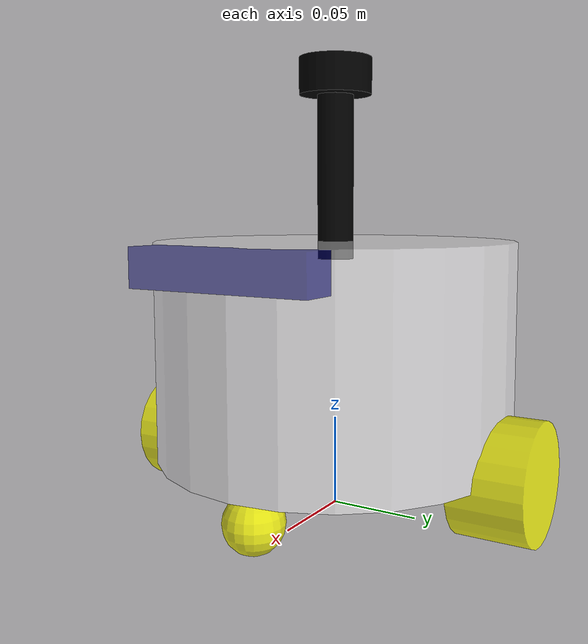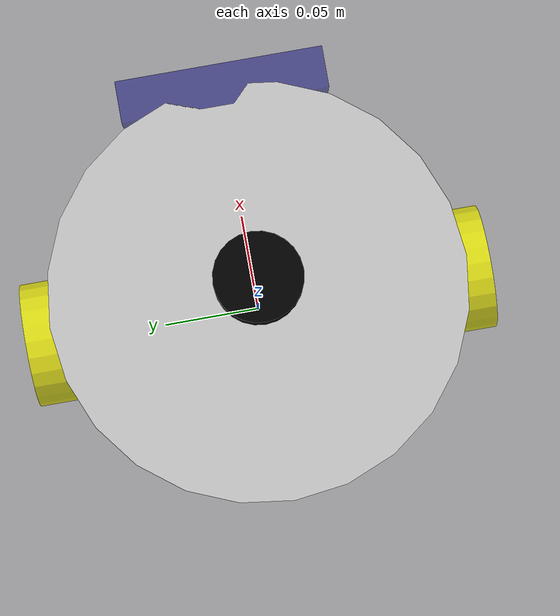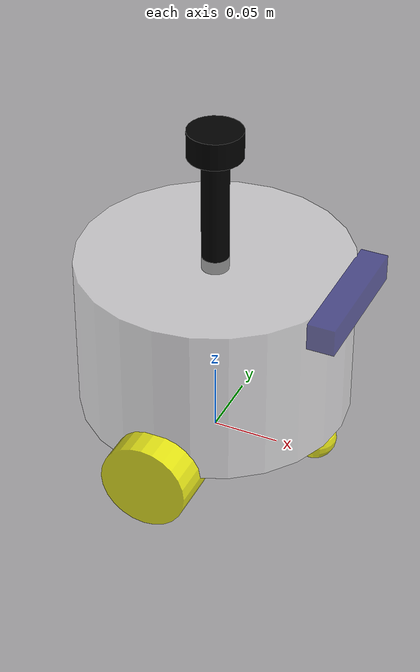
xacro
<?xml version="1.0"?>
<robot xmlns:xacro="http://www.ros.org/wiki/xacro" name="fishbot">
    <!--基础部分-->
    <xacro:include filename="$(find fishbot_description)/urdf/fishbot/base.urdf.xacro"/>
    <!--传感器部分-->
    <xacro:include filename="$(find fishbot_description)/urdf/fishbot/sensor/camera.urdf.xacro"/>
    <xacro:include filename="$(find fishbot_description)/urdf/fishbot/sensor/imu.urdf.xacro"/>
    <xacro:include filename="$(find fishbot_description)/urdf/fishbot/sensor/laser.urdf.xacro"/>
    <!--执行器部分-->
    <xacro:include filename="$(find fishbot_description)/urdf/fishbot/actuator/wheel.urdf.xacro"/>
    <xacro:include filename="$(find fishbot_description)/urdf/fishbot/actuator/caster.urdf.xacro"/>

    <!--两轮差速插件(见gazebo_control_plugin.xacro)-->

    <!--用ros2_control控制硬件-->
    <xacro:include filename="$(find fishbot_description)/urdf/fishbot/ros2_control.xacro"/>
    <!--雷达仿真插件-->
    <xacro:include filename="$(find fishbot_description)/urdf/fishbot/plugins/gazebo_sensor_plugin.xacro"/>

    <!--主体-->
    <xacro:base_xacro length="0.12" radius="0.10"/>
    <!--相机-->
    <xacro:camera_xacro  xyz="0.10 0.0 0.05" />
    <!--传感器-->
    <xacro:imu_xacro xyz="0.0 0.0 0.02"/>
    <!--雷达-->
    <xacro:laser_xacro xyz="0.0 0.0 0.10"/>
    <!--轮子-->
    <xacro:wheel_xacro wheel_name="left_wheel" xyz="0.0 0.10 -0.06"/>
    <xacro:wheel_xacro wheel_name="right_wheel" xyz="0.0 -0.10 -0.06"/>
    <!--万向轮-->
    <xacro:caster_xacro caster_name="front_caster" xyz="0.08 0.0 -0.076"/>
    <xacro:caster_xacro caster_name="back_caster" xyz="-0.08 0.0 -0.076"/>

    <!--插件-->
    <xacro:gazebo_sensor_plugin />
    <xacro:fishbot_ros2_control/>

</robot>

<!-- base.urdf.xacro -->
<robot xmlns:xacro="http://www.ros.org/wiki/xacro" >
    <xacro:include filename="$(find fishbot_description)/urdf/fishbot/common_inertia.xacro"/>
    <xacro:macro name="base_xacro" params="length radius">

        <link name="base_footprint"/>

        <link name="base_link">
            <visual>
                    <!--沿着自己几何中心的偏移和旋转量-->
                <origin xyz="0.0 0.0 0.0" rpy="0.0 0.0 0.0"/>
                <geometry>
                    <cylinder radius="${radius}" length="${length}"/>
                </geometry>
                <material name="white">
                    <color rgba="1.0 1.0 1.0 0.5"/>
                </material>
            </visual>

            <!--添加碰撞属性-->
            <collision>
                <origin xyz="0.0 0.0 0.0" rpy="0.0 0.0 0.0"/>
                <geometry>
                    <cylinder radius="${radius}" length="${length}"/>
                </geometry>
                <material name="white">
                    <color rgba="1.0 1.0 1.0 0.5"/>
                </material>

            </collision>
            <xacro:cylinder_inertia m="1.0" r="${radius}" h="${length}"/>
        </link>

        <joint name="base_joint" type="fixed">
            <origin xyz="0.0 0.0 ${length/2.0+0.032-0.001}" rpy="0.0 0.0 0.0"/>
            <parent link="base_footprint"/>
            <child link="base_link"/>
        </joint>
    </xacro:macro>

</robot>

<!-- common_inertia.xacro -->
<robot xmlns:xacro="http://ros.org/wiki/xacro">

    <xacro:macro name="box_inertia" params="m w h d">
        <inertial>
            <mass value="${m}" />
            <inertia ixx="${(m/12) * (h*h + d*d)}" ixy="0.0" ixz="0.0" iyy="${(m/12) * (w*w + d*d)}" iyz="0.0" izz="${(m/12) * (w*w + h*h)}" />
        </inertial>
    </xacro:macro>

    <xacro:macro name="cylinder_inertia" params="m r h">
        <inertial>
            <mass value="${m}" />
            <inertia ixx="${(m/12) * (3*r*r + h*h)}" ixy="0" ixz="0" iyy="${(m/12) * (3*r*r + h*h)}" iyz="0" izz="${(m/2) * (r*r)}" />
        </inertial>
    </xacro:macro>

    <xacro:macro name="sphere_inertia" params="m r">
        <inertial>
            <mass value="${m}" />
            <inertia ixx="${(2/5) * m * (r*r)}" ixy="0.0" ixz="0.0" iyy="${(2/5) * m * (r*r)}" iyz="0.0" izz="${(2/5) * m * (r*r)}" />
        </inertial>
    </xacro:macro>

</robot>

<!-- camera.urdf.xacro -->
<robot xmlns:xacro="http://www.ros.org/wiki/xacro">
    <xacro:include filename="$(find fishbot_description)/urdf/fishbot/common_inertia.xacro"/>
    <xacro:macro name="camera_xacro" params="xyz">
        <link name="camera_link">
            <visual>
                <origin xyz="0.0 0.0 0.0" rpy="0.0 0.0 0.0"/>
                <geometry>
                    <box size="0.02 0.10 0.02"/>
                </geometry>
                <material name="Null">
                    <color rgba="0.0 0.0 0.5 0.5"/>
                </material>
            </visual>

            <collision>
                <origin xyz="0.0 0.0 0.0" rpy="0.0 0.0 0.0"/>
                <geometry>
                    <box size="0.02 0.10 0.02"/>
                </geometry>
                <material name="Null">
                    <color rgba="0.0 0.0 0.5 0.5"/>
                </material>
            </collision>
            <xacro:box_inertia m="0.1" w="0.02" h="0.10" d="0.02" />
        </link>

        <link name="camera_optical_link"></link>

        <joint name="camera_joint" type="fixed">
            <origin xyz="${xyz}" rpy="0.0 0.0 0.0"/>
            <parent link="base_link"/>
            <child link="camera_link"/>
        </joint>

        <joint name="camera_optical_joint" type="fixed">
        <!--
            给坐标系旋转是为了:把 ROS 相机坐标系 转换成 光学坐标系
            ROS 标准坐标系：
                X 轴：向前  Y 轴：向左  Z 轴：向上
            光学坐标系：
                Z 轴：向前（也就是镜头朝向）  X 轴：向右 Y 轴：向下

        -->
            <origin xyz="0.0 0.0 0.0" rpy="${-pi/2} 0.0 ${-pi/2}"/>
            <parent link="camera_link"/>
            <child link="camera_optical_link"/>
        </joint>
    </xacro:macro>

</robot>

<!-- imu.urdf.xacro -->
<robot xmlns:xacro="http://www.ros.org/wiki/xacro">
    <xacro:include filename="$(find fishbot_description)/urdf/fishbot/common_inertia.xacro"/>
    <xacro:macro name="imu_xacro" params="xyz">
        <link name="imu_link">
            <visual>
                <origin xyz="0.0 0.0 0.0" rpy="0.0 0.0 0.0"/>
                <geometry>
                    <box size="0.02 0.02 0.02"/>
                </geometry>
                <material name="Null">
                    <color rgba="0.0 0.0 0.5 0.5"/>
                </material>
            </visual>

            <collision>
                <origin xyz="0.0 0.0 0.0" rpy="0.0 0.0 0.0"/>
                <geometry>
                    <box size="0.02 0.02 0.02"/>
                </geometry>
                <material name="Null">
                    <color rgba="0.0 0.0 0.5 0.5"/>
                </material>
            </collision>

            <xacro:box_inertia m="0.05" w="0.02" h="0.02" d="0.02"/>
        </link>

        <joint name="imu_joint" type="fixed">
            <origin xyz="${xyz}" rpy="0.0 0.0 0.0"/>
            <parent link="base_link"/>
            <child link="imu_link"/>
        </joint>
    </xacro:macro>

</robot>

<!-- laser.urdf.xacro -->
<robot xmlns:xacro="http://www.ros.org/wiki/xacro">
    <xacro:include filename="$(find fishbot_description)/urdf/fishbot/common_inertia.xacro"/>
    <xacro:macro name="laser_xacro" params="xyz">
        <!--雷达支撑杆-->
        <link name="laser_cylinder_link">
            <visual>
                <origin xyz="0.0 0.0 0.0" rpy="0.0 0.0 0.0"/>
                <geometry>
                    <cylinder radius="0.01" length="0.10"/>
                </geometry>
                <material name="black">
                    <color rgba="0.0 0.0 0.0 1.0"/>
                </material>
            </visual>
            <collision>
                <origin xyz="0.0 0.0 0.0" rpy="0.0 0.0 0.0"/>
                <geometry>
                    <cylinder radius="0.01" length="0.10"/>
                </geometry>
                <material name="black">
                    <color rgba="0.0 0.0 0.0 0.5"/>
                </material>
            </collision>
            <xacro:cylinder_inertia m="0.05" r="0.01" h="0.1"/>
        </link>

        <!--雷达-->
        <link name="laser_link">
            <visual>
                <origin xyz="0.0 0.0 0.0" rpy="0.0 0.0 0.0"/>
                <geometry>
                    <cylinder radius="0.02" length="0.02"/>
                </geometry>
                <material name="black">
                    <color rgba="0.0 0.0 0.0 1.0"/>
                </material>
            </visual>
            <collision>
                <origin xyz="0.0 0.0 0.0" rpy="0.0 0.0 0.0"/>
                <geometry>
                    <cylinder radius="0.02" length="0.02"/>
                </geometry>
                <material name="black">
                    <color rgba="0.0 0.0 0.0 0.5"/>
                </material>
            </collision>
            <xacro:cylinder_inertia m="0.10" r="0.02" h="0.02"/>
        </link>

        <!--雷达固定到支撑杆上-->
        <!--向上偏移0.05,雷达支撑杆的顶部正好位于雷达中心点-->
        <joint name="laser_joint" type="fixed">
            <origin xyz="0.0 0.0 0.05" rpy="0.0 0.0 0.0"/>
            <parent link="laser_cylinder_link"/>
            <child link="laser_link"/>
        </joint>

        <joint name="laser_cylinder_joint" type="fixed">
            <origin xyz="${xyz}" rpy="0.0 0.0 0.0"/>
            <parent link="base_link"/>
            <child link="laser_cylinder_link"/>
        </joint>

        <gazebo reference = "laser_cylinder_link">
            <material>Gazebo/Black</material>
        </gazebo>

        <gazebo reference = "laser_link">
            <material>Gazebo/Black</material>
        </gazebo>

    </xacro:macro>

</robot>

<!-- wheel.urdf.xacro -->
<robot xmlns:xacro="http://www.ros.org/wiki/xacro">
    <xacro:include filename="$(find fishbot_description)/urdf/fishbot/common_inertia.xacro"/>
    <xacro:macro name="wheel_xacro" params="wheel_name xyz ">
        <link name="${wheel_name}_link">
            <visual>
                <origin xyz="0.0 0.0 0.0" rpy="1.57079 0.0 0.0"/><!--沿x轴旋转pi/2-->
                <geometry>
                    <cylinder radius="0.032" length="0.04"/>
                </geometry>
                <material name="yellow">
                    <color rgba="1.0 1.0 0.0 0.8"/>
                </material>
            </visual>
            <collision>
                <origin xyz="0.0 0.0 0.0" rpy="1.57079 0.0 0.0"/><!--沿x轴旋转pi/2-->
                <geometry>
                    <cylinder radius="0.032" length="0.04"/>
                </geometry>
                <material name="yellow">
                    <color rgba="1.0 1.0 0.0 0.8"/>
                </material>
            </collision>
            <xacro:cylinder_inertia m="0.05" r="0.032" h="0.04"/>
        </link>

        <joint name="${wheel_name}_joint" type="continuous">
            <origin xyz="${xyz}" rpy="0.0 0.0 0.0"/>
            <parent link="base_link"/>
            <child link="${wheel_name}_link"/>
            <axis xyz="0 1 0"/><!--轮子绕y轴旋转-->
        </joint>

        <gazebo reference = "${wheel_name}_link">
            <material>Gazebo/Yellow</material>
            <mu1 value="20.0"/> <!--切向摩擦系数-->
            <mu2 value="20.0"/> <!--法向摩擦系数-->
            <kp value="1000000000.0"/> <!--接触刚度系数-->
            <kd value="1.0"/> <!--阻尼系数-->
        </gazebo>
    </xacro:macro>

</robot>

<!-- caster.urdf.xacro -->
<robot xmlns:xacro="http://www.ros.org/wiki/xacro">
    <xacro:include filename="$(find fishbot_description)/urdf/fishbot/common_inertia.xacro"/>
    <xacro:macro name="caster_xacro" params="caster_name xyz">
        <link name="${caster_name}_link">
            <visual>
                <origin xyz="0.0 0.0 0.0" rpy="0.0 0.0 0.0"/>

                <geometry>
                    <sphere radius="0.016"/>
                </geometry>

                <material name="yellow">
                    <color rgba="1.0 1.0 0.0 0.8"/>
                </material>
            </visual>
            <collision>
                <origin xyz="0.0 0.0 0.0" rpy="0.0 0.0 0.0"/>
                <geometry>
                    <sphere radius="0.016"/>
                </geometry>
                <material name="yellow">
                    <color rgba="1.0 1.0 0.0 0.8"/>
                </material>
            </collision>
            <xacro:sphere_inertia m="0.05" r="0.016"/>
        </link>

        <joint name="${caster_name}_joint" type="fixed">
            <origin xyz="${xyz}" rpy="0.0 0.0 0.0"/>
            <parent link="base_link"/>
            <child link="${caster_name}_link"/>
        </joint>

         <gazebo reference = "${caster_name}_link">
            <material>Gazebo/Yellow</material>
            <mu1 value="0.0"/> <!--切向摩擦系数-->
            <mu2 value="0.0"/> <!--法向摩擦系数-->
            <kp value="1000000000.0"/> <!--接触刚度系数-->
            <kd value="1.0"/> <!--阻尼系数-->

        </gazebo>
    </xacro:macro>

</robot>
